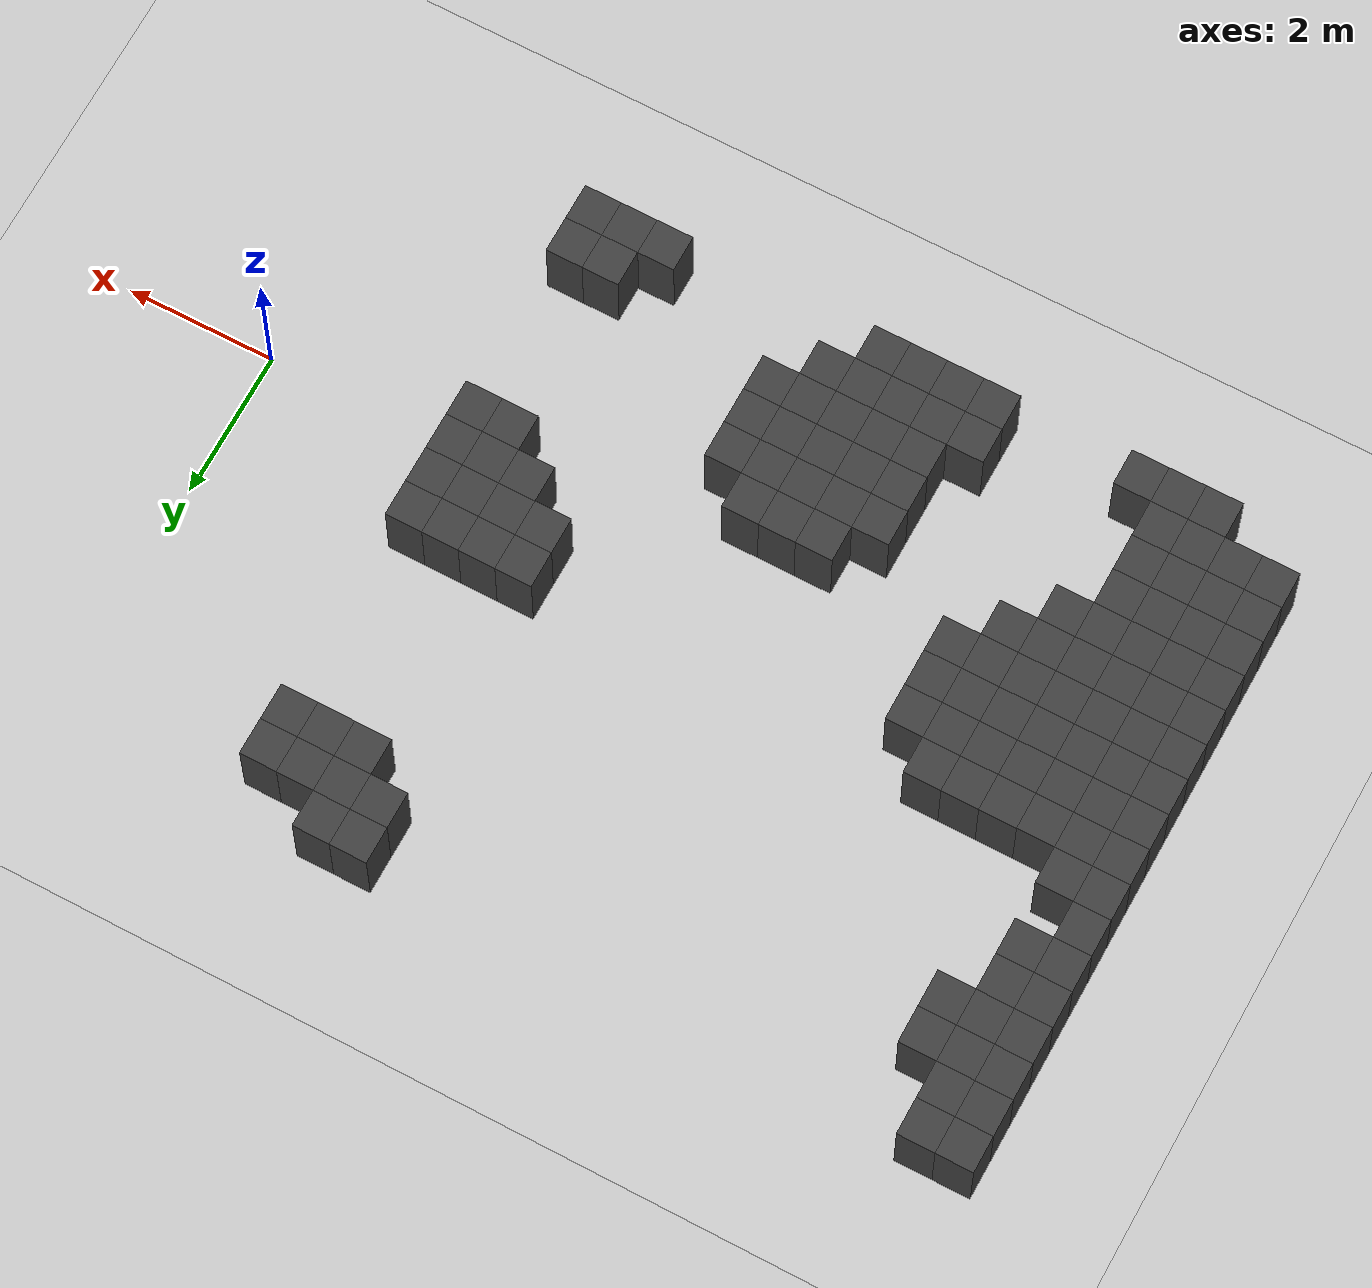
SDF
<sdf version="1.7">
 <world name="map_8382">
  <model name="ground_plane">
   <static>true</static>
   <link name="link">
    <collision name="collision">
     <geometry><plane><normal>0 0 1</normal><size>200 200</size></plane></geometry>
    </collision>
    <visual name="visual">
     <geometry><plane><normal>0 0 1</normal><size>200 200</size></plane></geometry>
     <material><ambient>0.8 0.8 0.8 1</ambient><diffuse>0.8 0.8 0.8 1</diffuse></material>
    </visual>
   </link>
  </model>
  <model name="maze_environment">
   <static>true</static>
   <link name="wall_267">
    <pose>-12.250 5.250 0.500 0 0 0</pose>
    <collision name="col"><geometry><box><size>0.5 0.5 1.0</size></box></geometry></collision>
    <visual name="vis">
     <geometry><box><size>0.5 0.5 1.0</size></box></geometry>
     <material><ambient>0.15 0.15 0.15 1</ambient><diffuse>0.25 0.25 0.25 1</diffuse></material>
    </visual>
   </link>
   <link name="wall_268">
    <pose>-11.750 5.250 0.500 0 0 0</pose>
    <collision name="col"><geometry><box><size>0.5 0.5 1.0</size></box></geometry></collision>
    <visual name="vis">
     <geometry><box><size>0.5 0.5 1.0</size></box></geometry>
     <material><ambient>0.15 0.15 0.15 1</ambient><diffuse>0.25 0.25 0.25 1</diffuse></material>
    </visual>
   </link>
   <link name="wall_269">
    <pose>-4.250 5.250 0.500 0 0 0</pose>
    <collision name="col"><geometry><box><size>0.5 0.5 1.0</size></box></geometry></collision>
    <visual name="vis">
     <geometry><box><size>0.5 0.5 1.0</size></box></geometry>
     <material><ambient>0.15 0.15 0.15 1</ambient><diffuse>0.25 0.25 0.25 1</diffuse></material>
    </visual>
   </link>
   <link name="wall_270">
    <pose>-3.750 5.250 0.500 0 0 0</pose>
    <collision name="col"><geometry><box><size>0.5 0.5 1.0</size></box></geometry></collision>
    <visual name="vis">
     <geometry><box><size>0.5 0.5 1.0</size></box></geometry>
     <material><ambient>0.15 0.15 0.15 1</ambient><diffuse>0.25 0.25 0.25 1</diffuse></material>
    </visual>
   </link>
   <link name="wall_276">
    <pose>-12.250 4.750 0.500 0 0 0</pose>
    <collision name="col"><geometry><box><size>0.5 0.5 1.0</size></box></geometry></collision>
    <visual name="vis">
     <geometry><box><size>0.5 0.5 1.0</size></box></geometry>
     <material><ambient>0.15 0.15 0.15 1</ambient><diffuse>0.25 0.25 0.25 1</diffuse></material>
    </visual>
   </link>
   <link name="wall_277">
    <pose>-11.750 4.750 0.500 0 0 0</pose>
    <collision name="col"><geometry><box><size>0.5 0.5 1.0</size></box></geometry></collision>
    <visual name="vis">
     <geometry><box><size>0.5 0.5 1.0</size></box></geometry>
     <material><ambient>0.15 0.15 0.15 1</ambient><diffuse>0.25 0.25 0.25 1</diffuse></material>
    </visual>
   </link>
   <link name="wall_278">
    <pose>-4.250 4.750 0.500 0 0 0</pose>
    <collision name="col"><geometry><box><size>0.5 0.5 1.0</size></box></geometry></collision>
    <visual name="vis">
     <geometry><box><size>0.5 0.5 1.0</size></box></geometry>
     <material><ambient>0.15 0.15 0.15 1</ambient><diffuse>0.25 0.25 0.25 1</diffuse></material>
    </visual>
   </link>
   <link name="wall_279">
    <pose>-3.750 4.750 0.500 0 0 0</pose>
    <collision name="col"><geometry><box><size>0.5 0.5 1.0</size></box></geometry></collision>
    <visual name="vis">
     <geometry><box><size>0.5 0.5 1.0</size></box></geometry>
     <material><ambient>0.15 0.15 0.15 1</ambient><diffuse>0.25 0.25 0.25 1</diffuse></material>
    </visual>
   </link>
   <link name="wall_280">
    <pose>-3.250 4.750 0.500 0 0 0</pose>
    <collision name="col"><geometry><box><size>0.5 0.5 1.0</size></box></geometry></collision>
    <visual name="vis">
     <geometry><box><size>0.5 0.5 1.0</size></box></geometry>
     <material><ambient>0.15 0.15 0.15 1</ambient><diffuse>0.25 0.25 0.25 1</diffuse></material>
    </visual>
   </link>
   <link name="wall_281">
    <pose>-2.750 4.750 0.500 0 0 0</pose>
    <collision name="col"><geometry><box><size>0.5 0.5 1.0</size></box></geometry></collision>
    <visual name="vis">
     <geometry><box><size>0.5 0.5 1.0</size></box></geometry>
     <material><ambient>0.15 0.15 0.15 1</ambient><diffuse>0.25 0.25 0.25 1</diffuse></material>
    </visual>
   </link>
   <link name="wall_287">
    <pose>-12.250 4.250 0.500 0 0 0</pose>
    <collision name="col"><geometry><box><size>0.5 0.5 1.0</size></box></geometry></collision>
    <visual name="vis">
     <geometry><box><size>0.5 0.5 1.0</size></box></geometry>
     <material><ambient>0.15 0.15 0.15 1</ambient><diffuse>0.25 0.25 0.25 1</diffuse></material>
    </visual>
   </link>
   <link name="wall_288">
    <pose>-11.750 4.250 0.500 0 0 0</pose>
    <collision name="col"><geometry><box><size>0.5 0.5 1.0</size></box></geometry></collision>
    <visual name="vis">
     <geometry><box><size>0.5 0.5 1.0</size></box></geometry>
     <material><ambient>0.15 0.15 0.15 1</ambient><diffuse>0.25 0.25 0.25 1</diffuse></material>
    </visual>
   </link>
   <link name="wall_289">
    <pose>-11.250 4.250 0.500 0 0 0</pose>
    <collision name="col"><geometry><box><size>0.5 0.5 1.0</size></box></geometry></collision>
    <visual name="vis">
     <geometry><box><size>0.5 0.5 1.0</size></box></geometry>
     <material><ambient>0.15 0.15 0.15 1</ambient><diffuse>0.25 0.25 0.25 1</diffuse></material>
    </visual>
   </link>
   <link name="wall_290">
    <pose>-3.750 4.250 0.500 0 0 0</pose>
    <collision name="col"><geometry><box><size>0.5 0.5 1.0</size></box></geometry></collision>
    <visual name="vis">
     <geometry><box><size>0.5 0.5 1.0</size></box></geometry>
     <material><ambient>0.15 0.15 0.15 1</ambient><diffuse>0.25 0.25 0.25 1</diffuse></material>
    </visual>
   </link>
   <link name="wall_291">
    <pose>-3.250 4.250 0.500 0 0 0</pose>
    <collision name="col"><geometry><box><size>0.5 0.5 1.0</size></box></geometry></collision>
    <visual name="vis">
     <geometry><box><size>0.5 0.5 1.0</size></box></geometry>
     <material><ambient>0.15 0.15 0.15 1</ambient><diffuse>0.25 0.25 0.25 1</diffuse></material>
    </visual>
   </link>
   <link name="wall_292">
    <pose>-2.750 4.250 0.500 0 0 0</pose>
    <collision name="col"><geometry><box><size>0.5 0.5 1.0</size></box></geometry></collision>
    <visual name="vis">
     <geometry><box><size>0.5 0.5 1.0</size></box></geometry>
     <material><ambient>0.15 0.15 0.15 1</ambient><diffuse>0.25 0.25 0.25 1</diffuse></material>
    </visual>
   </link>
   <link name="wall_298">
    <pose>-12.250 3.750 0.500 0 0 0</pose>
    <collision name="col"><geometry><box><size>0.5 0.5 1.0</size></box></geometry></collision>
    <visual name="vis">
     <geometry><box><size>0.5 0.5 1.0</size></box></geometry>
     <material><ambient>0.15 0.15 0.15 1</ambient><diffuse>0.25 0.25 0.25 1</diffuse></material>
    </visual>
   </link>
   <link name="wall_299">
    <pose>-11.750 3.750 0.500 0 0 0</pose>
    <collision name="col"><geometry><box><size>0.5 0.5 1.0</size></box></geometry></collision>
    <visual name="vis">
     <geometry><box><size>0.5 0.5 1.0</size></box></geometry>
     <material><ambient>0.15 0.15 0.15 1</ambient><diffuse>0.25 0.25 0.25 1</diffuse></material>
    </visual>
   </link>
   <link name="wall_300">
    <pose>-11.250 3.750 0.500 0 0 0</pose>
    <collision name="col"><geometry><box><size>0.5 0.5 1.0</size></box></geometry></collision>
    <visual name="vis">
     <geometry><box><size>0.5 0.5 1.0</size></box></geometry>
     <material><ambient>0.15 0.15 0.15 1</ambient><diffuse>0.25 0.25 0.25 1</diffuse></material>
    </visual>
   </link>
   <link name="wall_306">
    <pose>-12.250 3.250 0.500 0 0 0</pose>
    <collision name="col"><geometry><box><size>0.5 0.5 1.0</size></box></geometry></collision>
    <visual name="vis">
     <geometry><box><size>0.5 0.5 1.0</size></box></geometry>
     <material><ambient>0.15 0.15 0.15 1</ambient><diffuse>0.25 0.25 0.25 1</diffuse></material>
    </visual>
   </link>
   <link name="wall_307">
    <pose>-11.750 3.250 0.500 0 0 0</pose>
    <collision name="col"><geometry><box><size>0.5 0.5 1.0</size></box></geometry></collision>
    <visual name="vis">
     <geometry><box><size>0.5 0.5 1.0</size></box></geometry>
     <material><ambient>0.15 0.15 0.15 1</ambient><diffuse>0.25 0.25 0.25 1</diffuse></material>
    </visual>
   </link>
   <link name="wall_314">
    <pose>-12.250 2.750 0.500 0 0 0</pose>
    <collision name="col"><geometry><box><size>0.5 0.5 1.0</size></box></geometry></collision>
    <visual name="vis">
     <geometry><box><size>0.5 0.5 1.0</size></box></geometry>
     <material><ambient>0.15 0.15 0.15 1</ambient><diffuse>0.25 0.25 0.25 1</diffuse></material>
    </visual>
   </link>
   <link name="wall_315">
    <pose>-11.750 2.750 0.500 0 0 0</pose>
    <collision name="col"><geometry><box><size>0.5 0.5 1.0</size></box></geometry></collision>
    <visual name="vis">
     <geometry><box><size>0.5 0.5 1.0</size></box></geometry>
     <material><ambient>0.15 0.15 0.15 1</ambient><diffuse>0.25 0.25 0.25 1</diffuse></material>
    </visual>
   </link>
   <link name="wall_322">
    <pose>-12.250 2.250 0.500 0 0 0</pose>
    <collision name="col"><geometry><box><size>0.5 0.5 1.0</size></box></geometry></collision>
    <visual name="vis">
     <geometry><box><size>0.5 0.5 1.0</size></box></geometry>
     <material><ambient>0.15 0.15 0.15 1</ambient><diffuse>0.25 0.25 0.25 1</diffuse></material>
    </visual>
   </link>
   <link name="wall_329">
    <pose>-12.250 1.750 0.500 0 0 0</pose>
    <collision name="col"><geometry><box><size>0.5 0.5 1.0</size></box></geometry></collision>
    <visual name="vis">
     <geometry><box><size>0.5 0.5 1.0</size></box></geometry>
     <material><ambient>0.15 0.15 0.15 1</ambient><diffuse>0.25 0.25 0.25 1</diffuse></material>
    </visual>
   </link>
   <link name="wall_330">
    <pose>-11.750 1.750 0.500 0 0 0</pose>
    <collision name="col"><geometry><box><size>0.5 0.5 1.0</size></box></geometry></collision>
    <visual name="vis">
     <geometry><box><size>0.5 0.5 1.0</size></box></geometry>
     <material><ambient>0.15 0.15 0.15 1</ambient><diffuse>0.25 0.25 0.25 1</diffuse></material>
    </visual>
   </link>
   <link name="wall_333">
    <pose>-12.250 1.250 0.500 0 0 0</pose>
    <collision name="col"><geometry><box><size>0.5 0.5 1.0</size></box></geometry></collision>
    <visual name="vis">
     <geometry><box><size>0.5 0.5 1.0</size></box></geometry>
     <material><ambient>0.15 0.15 0.15 1</ambient><diffuse>0.25 0.25 0.25 1</diffuse></material>
    </visual>
   </link>
   <link name="wall_334">
    <pose>-11.750 1.250 0.500 0 0 0</pose>
    <collision name="col"><geometry><box><size>0.5 0.5 1.0</size></box></geometry></collision>
    <visual name="vis">
     <geometry><box><size>0.5 0.5 1.0</size></box></geometry>
     <material><ambient>0.15 0.15 0.15 1</ambient><diffuse>0.25 0.25 0.25 1</diffuse></material>
    </visual>
   </link>
   <link name="wall_335">
    <pose>-11.250 1.250 0.500 0 0 0</pose>
    <collision name="col"><geometry><box><size>0.5 0.5 1.0</size></box></geometry></collision>
    <visual name="vis">
     <geometry><box><size>0.5 0.5 1.0</size></box></geometry>
     <material><ambient>0.15 0.15 0.15 1</ambient><diffuse>0.25 0.25 0.25 1</diffuse></material>
    </visual>
   </link>
   <link name="wall_336">
    <pose>-10.750 1.250 0.500 0 0 0</pose>
    <collision name="col"><geometry><box><size>0.5 0.5 1.0</size></box></geometry></collision>
    <visual name="vis">
     <geometry><box><size>0.5 0.5 1.0</size></box></geometry>
     <material><ambient>0.15 0.15 0.15 1</ambient><diffuse>0.25 0.25 0.25 1</diffuse></material>
    </visual>
   </link>
   <link name="wall_337">
    <pose>-10.250 1.250 0.500 0 0 0</pose>
    <collision name="col"><geometry><box><size>0.5 0.5 1.0</size></box></geometry></collision>
    <visual name="vis">
     <geometry><box><size>0.5 0.5 1.0</size></box></geometry>
     <material><ambient>0.15 0.15 0.15 1</ambient><diffuse>0.25 0.25 0.25 1</diffuse></material>
    </visual>
   </link>
   <link name="wall_338">
    <pose>-9.750 1.250 0.500 0 0 0</pose>
    <collision name="col"><geometry><box><size>0.5 0.5 1.0</size></box></geometry></collision>
    <visual name="vis">
     <geometry><box><size>0.5 0.5 1.0</size></box></geometry>
     <material><ambient>0.15 0.15 0.15 1</ambient><diffuse>0.25 0.25 0.25 1</diffuse></material>
    </visual>
   </link>
   <link name="wall_339">
    <pose>-4.250 1.250 0.500 0 0 0</pose>
    <collision name="col"><geometry><box><size>0.5 0.5 1.0</size></box></geometry></collision>
    <visual name="vis">
     <geometry><box><size>0.5 0.5 1.0</size></box></geometry>
     <material><ambient>0.15 0.15 0.15 1</ambient><diffuse>0.25 0.25 0.25 1</diffuse></material>
    </visual>
   </link>
   <link name="wall_340">
    <pose>-3.750 1.250 0.500 0 0 0</pose>
    <collision name="col"><geometry><box><size>0.5 0.5 1.0</size></box></geometry></collision>
    <visual name="vis">
     <geometry><box><size>0.5 0.5 1.0</size></box></geometry>
     <material><ambient>0.15 0.15 0.15 1</ambient><diffuse>0.25 0.25 0.25 1</diffuse></material>
    </visual>
   </link>
   <link name="wall_341">
    <pose>-3.250 1.250 0.500 0 0 0</pose>
    <collision name="col"><geometry><box><size>0.5 0.5 1.0</size></box></geometry></collision>
    <visual name="vis">
     <geometry><box><size>0.5 0.5 1.0</size></box></geometry>
     <material><ambient>0.15 0.15 0.15 1</ambient><diffuse>0.25 0.25 0.25 1</diffuse></material>
    </visual>
   </link>
   <link name="wall_342">
    <pose>-2.750 1.250 0.500 0 0 0</pose>
    <collision name="col"><geometry><box><size>0.5 0.5 1.0</size></box></geometry></collision>
    <visual name="vis">
     <geometry><box><size>0.5 0.5 1.0</size></box></geometry>
     <material><ambient>0.15 0.15 0.15 1</ambient><diffuse>0.25 0.25 0.25 1</diffuse></material>
    </visual>
   </link>
   <link name="wall_349">
    <pose>-12.250 0.750 0.500 0 0 0</pose>
    <collision name="col"><geometry><box><size>0.5 0.5 1.0</size></box></geometry></collision>
    <visual name="vis">
     <geometry><box><size>0.5 0.5 1.0</size></box></geometry>
     <material><ambient>0.15 0.15 0.15 1</ambient><diffuse>0.25 0.25 0.25 1</diffuse></material>
    </visual>
   </link>
   <link name="wall_350">
    <pose>-11.750 0.750 0.500 0 0 0</pose>
    <collision name="col"><geometry><box><size>0.5 0.5 1.0</size></box></geometry></collision>
    <visual name="vis">
     <geometry><box><size>0.5 0.5 1.0</size></box></geometry>
     <material><ambient>0.15 0.15 0.15 1</ambient><diffuse>0.25 0.25 0.25 1</diffuse></material>
    </visual>
   </link>
   <link name="wall_351">
    <pose>-11.250 0.750 0.500 0 0 0</pose>
    <collision name="col"><geometry><box><size>0.5 0.5 1.0</size></box></geometry></collision>
    <visual name="vis">
     <geometry><box><size>0.5 0.5 1.0</size></box></geometry>
     <material><ambient>0.15 0.15 0.15 1</ambient><diffuse>0.25 0.25 0.25 1</diffuse></material>
    </visual>
   </link>
   <link name="wall_352">
    <pose>-10.750 0.750 0.500 0 0 0</pose>
    <collision name="col"><geometry><box><size>0.5 0.5 1.0</size></box></geometry></collision>
    <visual name="vis">
     <geometry><box><size>0.5 0.5 1.0</size></box></geometry>
     <material><ambient>0.15 0.15 0.15 1</ambient><diffuse>0.25 0.25 0.25 1</diffuse></material>
    </visual>
   </link>
   <link name="wall_353">
    <pose>-10.250 0.750 0.500 0 0 0</pose>
    <collision name="col"><geometry><box><size>0.5 0.5 1.0</size></box></geometry></collision>
    <visual name="vis">
     <geometry><box><size>0.5 0.5 1.0</size></box></geometry>
     <material><ambient>0.15 0.15 0.15 1</ambient><diffuse>0.25 0.25 0.25 1</diffuse></material>
    </visual>
   </link>
   <link name="wall_354">
    <pose>-9.750 0.750 0.500 0 0 0</pose>
    <collision name="col"><geometry><box><size>0.5 0.5 1.0</size></box></geometry></collision>
    <visual name="vis">
     <geometry><box><size>0.5 0.5 1.0</size></box></geometry>
     <material><ambient>0.15 0.15 0.15 1</ambient><diffuse>0.25 0.25 0.25 1</diffuse></material>
    </visual>
   </link>
   <link name="wall_355">
    <pose>-9.250 0.750 0.500 0 0 0</pose>
    <collision name="col"><geometry><box><size>0.5 0.5 1.0</size></box></geometry></collision>
    <visual name="vis">
     <geometry><box><size>0.5 0.5 1.0</size></box></geometry>
     <material><ambient>0.15 0.15 0.15 1</ambient><diffuse>0.25 0.25 0.25 1</diffuse></material>
    </visual>
   </link>
   <link name="wall_356">
    <pose>-4.250 0.750 0.500 0 0 0</pose>
    <collision name="col"><geometry><box><size>0.5 0.5 1.0</size></box></geometry></collision>
    <visual name="vis">
     <geometry><box><size>0.5 0.5 1.0</size></box></geometry>
     <material><ambient>0.15 0.15 0.15 1</ambient><diffuse>0.25 0.25 0.25 1</diffuse></material>
    </visual>
   </link>
   <link name="wall_357">
    <pose>-3.750 0.750 0.500 0 0 0</pose>
    <collision name="col"><geometry><box><size>0.5 0.5 1.0</size></box></geometry></collision>
    <visual name="vis">
     <geometry><box><size>0.5 0.5 1.0</size></box></geometry>
     <material><ambient>0.15 0.15 0.15 1</ambient><diffuse>0.25 0.25 0.25 1</diffuse></material>
    </visual>
   </link>
   <link name="wall_358">
    <pose>-3.250 0.750 0.500 0 0 0</pose>
    <collision name="col"><geometry><box><size>0.5 0.5 1.0</size></box></geometry></collision>
    <visual name="vis">
     <geometry><box><size>0.5 0.5 1.0</size></box></geometry>
     <material><ambient>0.15 0.15 0.15 1</ambient><diffuse>0.25 0.25 0.25 1</diffuse></material>
    </visual>
   </link>
   <link name="wall_359">
    <pose>-2.750 0.750 0.500 0 0 0</pose>
    <collision name="col"><geometry><box><size>0.5 0.5 1.0</size></box></geometry></collision>
    <visual name="vis">
     <geometry><box><size>0.5 0.5 1.0</size></box></geometry>
     <material><ambient>0.15 0.15 0.15 1</ambient><diffuse>0.25 0.25 0.25 1</diffuse></material>
    </visual>
   </link>
   <link name="wall_367">
    <pose>-12.250 0.250 0.500 0 0 0</pose>
    <collision name="col"><geometry><box><size>0.5 0.5 1.0</size></box></geometry></collision>
    <visual name="vis">
     <geometry><box><size>0.5 0.5 1.0</size></box></geometry>
     <material><ambient>0.15 0.15 0.15 1</ambient><diffuse>0.25 0.25 0.25 1</diffuse></material>
    </visual>
   </link>
   <link name="wall_368">
    <pose>-11.750 0.250 0.500 0 0 0</pose>
    <collision name="col"><geometry><box><size>0.5 0.5 1.0</size></box></geometry></collision>
    <visual name="vis">
     <geometry><box><size>0.5 0.5 1.0</size></box></geometry>
     <material><ambient>0.15 0.15 0.15 1</ambient><diffuse>0.25 0.25 0.25 1</diffuse></material>
    </visual>
   </link>
   <link name="wall_369">
    <pose>-11.250 0.250 0.500 0 0 0</pose>
    <collision name="col"><geometry><box><size>0.5 0.5 1.0</size></box></geometry></collision>
    <visual name="vis">
     <geometry><box><size>0.5 0.5 1.0</size></box></geometry>
     <material><ambient>0.15 0.15 0.15 1</ambient><diffuse>0.25 0.25 0.25 1</diffuse></material>
    </visual>
   </link>
   <link name="wall_370">
    <pose>-10.750 0.250 0.500 0 0 0</pose>
    <collision name="col"><geometry><box><size>0.5 0.5 1.0</size></box></geometry></collision>
    <visual name="vis">
     <geometry><box><size>0.5 0.5 1.0</size></box></geometry>
     <material><ambient>0.15 0.15 0.15 1</ambient><diffuse>0.25 0.25 0.25 1</diffuse></material>
    </visual>
   </link>
   <link name="wall_371">
    <pose>-10.250 0.250 0.500 0 0 0</pose>
    <collision name="col"><geometry><box><size>0.5 0.5 1.0</size></box></geometry></collision>
    <visual name="vis">
     <geometry><box><size>0.5 0.5 1.0</size></box></geometry>
     <material><ambient>0.15 0.15 0.15 1</ambient><diffuse>0.25 0.25 0.25 1</diffuse></material>
    </visual>
   </link>
   <link name="wall_372">
    <pose>-9.750 0.250 0.500 0 0 0</pose>
    <collision name="col"><geometry><box><size>0.5 0.5 1.0</size></box></geometry></collision>
    <visual name="vis">
     <geometry><box><size>0.5 0.5 1.0</size></box></geometry>
     <material><ambient>0.15 0.15 0.15 1</ambient><diffuse>0.25 0.25 0.25 1</diffuse></material>
    </visual>
   </link>
   <link name="wall_373">
    <pose>-9.250 0.250 0.500 0 0 0</pose>
    <collision name="col"><geometry><box><size>0.5 0.5 1.0</size></box></geometry></collision>
    <visual name="vis">
     <geometry><box><size>0.5 0.5 1.0</size></box></geometry>
     <material><ambient>0.15 0.15 0.15 1</ambient><diffuse>0.25 0.25 0.25 1</diffuse></material>
    </visual>
   </link>
   <link name="wall_374">
    <pose>-3.750 0.250 0.500 0 0 0</pose>
    <collision name="col"><geometry><box><size>0.5 0.5 1.0</size></box></geometry></collision>
    <visual name="vis">
     <geometry><box><size>0.5 0.5 1.0</size></box></geometry>
     <material><ambient>0.15 0.15 0.15 1</ambient><diffuse>0.25 0.25 0.25 1</diffuse></material>
    </visual>
   </link>
   <link name="wall_375">
    <pose>-3.250 0.250 0.500 0 0 0</pose>
    <collision name="col"><geometry><box><size>0.5 0.5 1.0</size></box></geometry></collision>
    <visual name="vis">
     <geometry><box><size>0.5 0.5 1.0</size></box></geometry>
     <material><ambient>0.15 0.15 0.15 1</ambient><diffuse>0.25 0.25 0.25 1</diffuse></material>
    </visual>
   </link>
   <link name="wall_376">
    <pose>-2.750 0.250 0.500 0 0 0</pose>
    <collision name="col"><geometry><box><size>0.5 0.5 1.0</size></box></geometry></collision>
    <visual name="vis">
     <geometry><box><size>0.5 0.5 1.0</size></box></geometry>
     <material><ambient>0.15 0.15 0.15 1</ambient><diffuse>0.25 0.25 0.25 1</diffuse></material>
    </visual>
   </link>
   <link name="wall_385">
    <pose>-12.250 -0.250 0.500 0 0 0</pose>
    <collision name="col"><geometry><box><size>0.5 0.5 1.0</size></box></geometry></collision>
    <visual name="vis">
     <geometry><box><size>0.5 0.5 1.0</size></box></geometry>
     <material><ambient>0.15 0.15 0.15 1</ambient><diffuse>0.25 0.25 0.25 1</diffuse></material>
    </visual>
   </link>
   <link name="wall_386">
    <pose>-11.750 -0.250 0.500 0 0 0</pose>
    <collision name="col"><geometry><box><size>0.5 0.5 1.0</size></box></geometry></collision>
    <visual name="vis">
     <geometry><box><size>0.5 0.5 1.0</size></box></geometry>
     <material><ambient>0.15 0.15 0.15 1</ambient><diffuse>0.25 0.25 0.25 1</diffuse></material>
    </visual>
   </link>
   <link name="wall_387">
    <pose>-11.250 -0.250 0.500 0 0 0</pose>
    <collision name="col"><geometry><box><size>0.5 0.5 1.0</size></box></geometry></collision>
    <visual name="vis">
     <geometry><box><size>0.5 0.5 1.0</size></box></geometry>
     <material><ambient>0.15 0.15 0.15 1</ambient><diffuse>0.25 0.25 0.25 1</diffuse></material>
    </visual>
   </link>
   <link name="wall_388">
    <pose>-10.750 -0.250 0.500 0 0 0</pose>
    <collision name="col"><geometry><box><size>0.5 0.5 1.0</size></box></geometry></collision>
    <visual name="vis">
     <geometry><box><size>0.5 0.5 1.0</size></box></geometry>
     <material><ambient>0.15 0.15 0.15 1</ambient><diffuse>0.25 0.25 0.25 1</diffuse></material>
    </visual>
   </link>
   <link name="wall_389">
    <pose>-10.250 -0.250 0.500 0 0 0</pose>
    <collision name="col"><geometry><box><size>0.5 0.5 1.0</size></box></geometry></collision>
    <visual name="vis">
     <geometry><box><size>0.5 0.5 1.0</size></box></geometry>
     <material><ambient>0.15 0.15 0.15 1</ambient><diffuse>0.25 0.25 0.25 1</diffuse></material>
    </visual>
   </link>
   <link name="wall_390">
    <pose>-9.750 -0.250 0.500 0 0 0</pose>
    <collision name="col"><geometry><box><size>0.5 0.5 1.0</size></box></geometry></collision>
    <visual name="vis">
     <geometry><box><size>0.5 0.5 1.0</size></box></geometry>
     <material><ambient>0.15 0.15 0.15 1</ambient><diffuse>0.25 0.25 0.25 1</diffuse></material>
    </visual>
   </link>
   <link name="wall_391">
    <pose>-9.250 -0.250 0.500 0 0 0</pose>
    <collision name="col"><geometry><box><size>0.5 0.5 1.0</size></box></geometry></collision>
    <visual name="vis">
     <geometry><box><size>0.5 0.5 1.0</size></box></geometry>
     <material><ambient>0.15 0.15 0.15 1</ambient><diffuse>0.25 0.25 0.25 1</diffuse></material>
    </visual>
   </link>
   <link name="wall_392">
    <pose>-3.250 -0.250 0.500 0 0 0</pose>
    <collision name="col"><geometry><box><size>0.5 0.5 1.0</size></box></geometry></collision>
    <visual name="vis">
     <geometry><box><size>0.5 0.5 1.0</size></box></geometry>
     <material><ambient>0.15 0.15 0.15 1</ambient><diffuse>0.25 0.25 0.25 1</diffuse></material>
    </visual>
   </link>
   <link name="wall_393">
    <pose>-2.750 -0.250 0.500 0 0 0</pose>
    <collision name="col"><geometry><box><size>0.5 0.5 1.0</size></box></geometry></collision>
    <visual name="vis">
     <geometry><box><size>0.5 0.5 1.0</size></box></geometry>
     <material><ambient>0.15 0.15 0.15 1</ambient><diffuse>0.25 0.25 0.25 1</diffuse></material>
    </visual>
   </link>
   <link name="wall_406">
    <pose>-12.250 -0.750 0.500 0 0 0</pose>
    <collision name="col"><geometry><box><size>0.5 0.5 1.0</size></box></geometry></collision>
    <visual name="vis">
     <geometry><box><size>0.5 0.5 1.0</size></box></geometry>
     <material><ambient>0.15 0.15 0.15 1</ambient><diffuse>0.25 0.25 0.25 1</diffuse></material>
    </visual>
   </link>
   <link name="wall_407">
    <pose>-11.750 -0.750 0.500 0 0 0</pose>
    <collision name="col"><geometry><box><size>0.5 0.5 1.0</size></box></geometry></collision>
    <visual name="vis">
     <geometry><box><size>0.5 0.5 1.0</size></box></geometry>
     <material><ambient>0.15 0.15 0.15 1</ambient><diffuse>0.25 0.25 0.25 1</diffuse></material>
    </visual>
   </link>
   <link name="wall_408">
    <pose>-11.250 -0.750 0.500 0 0 0</pose>
    <collision name="col"><geometry><box><size>0.5 0.5 1.0</size></box></geometry></collision>
    <visual name="vis">
     <geometry><box><size>0.5 0.5 1.0</size></box></geometry>
     <material><ambient>0.15 0.15 0.15 1</ambient><diffuse>0.25 0.25 0.25 1</diffuse></material>
    </visual>
   </link>
   <link name="wall_409">
    <pose>-10.750 -0.750 0.500 0 0 0</pose>
    <collision name="col"><geometry><box><size>0.5 0.5 1.0</size></box></geometry></collision>
    <visual name="vis">
     <geometry><box><size>0.5 0.5 1.0</size></box></geometry>
     <material><ambient>0.15 0.15 0.15 1</ambient><diffuse>0.25 0.25 0.25 1</diffuse></material>
    </visual>
   </link>
   <link name="wall_410">
    <pose>-10.250 -0.750 0.500 0 0 0</pose>
    <collision name="col"><geometry><box><size>0.5 0.5 1.0</size></box></geometry></collision>
    <visual name="vis">
     <geometry><box><size>0.5 0.5 1.0</size></box></geometry>
     <material><ambient>0.15 0.15 0.15 1</ambient><diffuse>0.25 0.25 0.25 1</diffuse></material>
    </visual>
   </link>
   <link name="wall_411">
    <pose>-9.750 -0.750 0.500 0 0 0</pose>
    <collision name="col"><geometry><box><size>0.5 0.5 1.0</size></box></geometry></collision>
    <visual name="vis">
     <geometry><box><size>0.5 0.5 1.0</size></box></geometry>
     <material><ambient>0.15 0.15 0.15 1</ambient><diffuse>0.25 0.25 0.25 1</diffuse></material>
    </visual>
   </link>
   <link name="wall_412">
    <pose>-7.250 -0.750 0.500 0 0 0</pose>
    <collision name="col"><geometry><box><size>0.5 0.5 1.0</size></box></geometry></collision>
    <visual name="vis">
     <geometry><box><size>0.5 0.5 1.0</size></box></geometry>
     <material><ambient>0.15 0.15 0.15 1</ambient><diffuse>0.25 0.25 0.25 1</diffuse></material>
    </visual>
   </link>
   <link name="wall_413">
    <pose>-6.750 -0.750 0.500 0 0 0</pose>
    <collision name="col"><geometry><box><size>0.5 0.5 1.0</size></box></geometry></collision>
    <visual name="vis">
     <geometry><box><size>0.5 0.5 1.0</size></box></geometry>
     <material><ambient>0.15 0.15 0.15 1</ambient><diffuse>0.25 0.25 0.25 1</diffuse></material>
    </visual>
   </link>
   <link name="wall_414">
    <pose>-6.250 -0.750 0.500 0 0 0</pose>
    <collision name="col"><geometry><box><size>0.5 0.5 1.0</size></box></geometry></collision>
    <visual name="vis">
     <geometry><box><size>0.5 0.5 1.0</size></box></geometry>
     <material><ambient>0.15 0.15 0.15 1</ambient><diffuse>0.25 0.25 0.25 1</diffuse></material>
    </visual>
   </link>
   <link name="wall_426">
    <pose>-12.250 -1.250 0.500 0 0 0</pose>
    <collision name="col"><geometry><box><size>0.5 0.5 1.0</size></box></geometry></collision>
    <visual name="vis">
     <geometry><box><size>0.5 0.5 1.0</size></box></geometry>
     <material><ambient>0.15 0.15 0.15 1</ambient><diffuse>0.25 0.25 0.25 1</diffuse></material>
    </visual>
   </link>
   <link name="wall_427">
    <pose>-11.750 -1.250 0.500 0 0 0</pose>
    <collision name="col"><geometry><box><size>0.5 0.5 1.0</size></box></geometry></collision>
    <visual name="vis">
     <geometry><box><size>0.5 0.5 1.0</size></box></geometry>
     <material><ambient>0.15 0.15 0.15 1</ambient><diffuse>0.25 0.25 0.25 1</diffuse></material>
    </visual>
   </link>
   <link name="wall_428">
    <pose>-11.250 -1.250 0.500 0 0 0</pose>
    <collision name="col"><geometry><box><size>0.5 0.5 1.0</size></box></geometry></collision>
    <visual name="vis">
     <geometry><box><size>0.5 0.5 1.0</size></box></geometry>
     <material><ambient>0.15 0.15 0.15 1</ambient><diffuse>0.25 0.25 0.25 1</diffuse></material>
    </visual>
   </link>
   <link name="wall_429">
    <pose>-10.750 -1.250 0.500 0 0 0</pose>
    <collision name="col"><geometry><box><size>0.5 0.5 1.0</size></box></geometry></collision>
    <visual name="vis">
     <geometry><box><size>0.5 0.5 1.0</size></box></geometry>
     <material><ambient>0.15 0.15 0.15 1</ambient><diffuse>0.25 0.25 0.25 1</diffuse></material>
    </visual>
   </link>
   <link name="wall_430">
    <pose>-10.250 -1.250 0.500 0 0 0</pose>
    <collision name="col"><geometry><box><size>0.5 0.5 1.0</size></box></geometry></collision>
    <visual name="vis">
     <geometry><box><size>0.5 0.5 1.0</size></box></geometry>
     <material><ambient>0.15 0.15 0.15 1</ambient><diffuse>0.25 0.25 0.25 1</diffuse></material>
    </visual>
   </link>
   <link name="wall_431">
    <pose>-7.750 -1.250 0.500 0 0 0</pose>
    <collision name="col"><geometry><box><size>0.5 0.5 1.0</size></box></geometry></collision>
    <visual name="vis">
     <geometry><box><size>0.5 0.5 1.0</size></box></geometry>
     <material><ambient>0.15 0.15 0.15 1</ambient><diffuse>0.25 0.25 0.25 1</diffuse></material>
    </visual>
   </link>
   <link name="wall_432">
    <pose>-7.250 -1.250 0.500 0 0 0</pose>
    <collision name="col"><geometry><box><size>0.5 0.5 1.0</size></box></geometry></collision>
    <visual name="vis">
     <geometry><box><size>0.5 0.5 1.0</size></box></geometry>
     <material><ambient>0.15 0.15 0.15 1</ambient><diffuse>0.25 0.25 0.25 1</diffuse></material>
    </visual>
   </link>
   <link name="wall_433">
    <pose>-6.750 -1.250 0.500 0 0 0</pose>
    <collision name="col"><geometry><box><size>0.5 0.5 1.0</size></box></geometry></collision>
    <visual name="vis">
     <geometry><box><size>0.5 0.5 1.0</size></box></geometry>
     <material><ambient>0.15 0.15 0.15 1</ambient><diffuse>0.25 0.25 0.25 1</diffuse></material>
    </visual>
   </link>
   <link name="wall_434">
    <pose>-6.250 -1.250 0.500 0 0 0</pose>
    <collision name="col"><geometry><box><size>0.5 0.5 1.0</size></box></geometry></collision>
    <visual name="vis">
     <geometry><box><size>0.5 0.5 1.0</size></box></geometry>
     <material><ambient>0.15 0.15 0.15 1</ambient><diffuse>0.25 0.25 0.25 1</diffuse></material>
    </visual>
   </link>
   <link name="wall_435">
    <pose>-5.750 -1.250 0.500 0 0 0</pose>
    <collision name="col"><geometry><box><size>0.5 0.5 1.0</size></box></geometry></collision>
    <visual name="vis">
     <geometry><box><size>0.5 0.5 1.0</size></box></geometry>
     <material><ambient>0.15 0.15 0.15 1</ambient><diffuse>0.25 0.25 0.25 1</diffuse></material>
    </visual>
   </link>
   <link name="wall_449">
    <pose>-12.250 -1.750 0.500 0 0 0</pose>
    <collision name="col"><geometry><box><size>0.5 0.5 1.0</size></box></geometry></collision>
    <visual name="vis">
     <geometry><box><size>0.5 0.5 1.0</size></box></geometry>
     <material><ambient>0.15 0.15 0.15 1</ambient><diffuse>0.25 0.25 0.25 1</diffuse></material>
    </visual>
   </link>
   <link name="wall_450">
    <pose>-11.750 -1.750 0.500 0 0 0</pose>
    <collision name="col"><geometry><box><size>0.5 0.5 1.0</size></box></geometry></collision>
    <visual name="vis">
     <geometry><box><size>0.5 0.5 1.0</size></box></geometry>
     <material><ambient>0.15 0.15 0.15 1</ambient><diffuse>0.25 0.25 0.25 1</diffuse></material>
    </visual>
   </link>
   <link name="wall_451">
    <pose>-11.250 -1.750 0.500 0 0 0</pose>
    <collision name="col"><geometry><box><size>0.5 0.5 1.0</size></box></geometry></collision>
    <visual name="vis">
     <geometry><box><size>0.5 0.5 1.0</size></box></geometry>
     <material><ambient>0.15 0.15 0.15 1</ambient><diffuse>0.25 0.25 0.25 1</diffuse></material>
    </visual>
   </link>
   <link name="wall_452">
    <pose>-10.750 -1.750 0.500 0 0 0</pose>
    <collision name="col"><geometry><box><size>0.5 0.5 1.0</size></box></geometry></collision>
    <visual name="vis">
     <geometry><box><size>0.5 0.5 1.0</size></box></geometry>
     <material><ambient>0.15 0.15 0.15 1</ambient><diffuse>0.25 0.25 0.25 1</diffuse></material>
    </visual>
   </link>
   <link name="wall_453">
    <pose>-7.750 -1.750 0.500 0 0 0</pose>
    <collision name="col"><geometry><box><size>0.5 0.5 1.0</size></box></geometry></collision>
    <visual name="vis">
     <geometry><box><size>0.5 0.5 1.0</size></box></geometry>
     <material><ambient>0.15 0.15 0.15 1</ambient><diffuse>0.25 0.25 0.25 1</diffuse></material>
    </visual>
   </link>
   <link name="wall_454">
    <pose>-7.250 -1.750 0.500 0 0 0</pose>
    <collision name="col"><geometry><box><size>0.5 0.5 1.0</size></box></geometry></collision>
    <visual name="vis">
     <geometry><box><size>0.5 0.5 1.0</size></box></geometry>
     <material><ambient>0.15 0.15 0.15 1</ambient><diffuse>0.25 0.25 0.25 1</diffuse></material>
    </visual>
   </link>
   <link name="wall_455">
    <pose>-6.750 -1.750 0.500 0 0 0</pose>
    <collision name="col"><geometry><box><size>0.5 0.5 1.0</size></box></geometry></collision>
    <visual name="vis">
     <geometry><box><size>0.5 0.5 1.0</size></box></geometry>
     <material><ambient>0.15 0.15 0.15 1</ambient><diffuse>0.25 0.25 0.25 1</diffuse></material>
    </visual>
   </link>
   <link name="wall_456">
    <pose>-6.250 -1.750 0.500 0 0 0</pose>
    <collision name="col"><geometry><box><size>0.5 0.5 1.0</size></box></geometry></collision>
    <visual name="vis">
     <geometry><box><size>0.5 0.5 1.0</size></box></geometry>
     <material><ambient>0.15 0.15 0.15 1</ambient><diffuse>0.25 0.25 0.25 1</diffuse></material>
    </visual>
   </link>
   <link name="wall_457">
    <pose>-5.750 -1.750 0.500 0 0 0</pose>
    <collision name="col"><geometry><box><size>0.5 0.5 1.0</size></box></geometry></collision>
    <visual name="vis">
     <geometry><box><size>0.5 0.5 1.0</size></box></geometry>
     <material><ambient>0.15 0.15 0.15 1</ambient><diffuse>0.25 0.25 0.25 1</diffuse></material>
    </visual>
   </link>
   <link name="wall_472">
    <pose>-12.250 -2.250 0.500 0 0 0</pose>
    <collision name="col"><geometry><box><size>0.5 0.5 1.0</size></box></geometry></collision>
    <visual name="vis">
     <geometry><box><size>0.5 0.5 1.0</size></box></geometry>
     <material><ambient>0.15 0.15 0.15 1</ambient><diffuse>0.25 0.25 0.25 1</diffuse></material>
    </visual>
   </link>
   <link name="wall_473">
    <pose>-11.750 -2.250 0.500 0 0 0</pose>
    <collision name="col"><geometry><box><size>0.5 0.5 1.0</size></box></geometry></collision>
    <visual name="vis">
     <geometry><box><size>0.5 0.5 1.0</size></box></geometry>
     <material><ambient>0.15 0.15 0.15 1</ambient><diffuse>0.25 0.25 0.25 1</diffuse></material>
    </visual>
   </link>
   <link name="wall_474">
    <pose>-11.250 -2.250 0.500 0 0 0</pose>
    <collision name="col"><geometry><box><size>0.5 0.5 1.0</size></box></geometry></collision>
    <visual name="vis">
     <geometry><box><size>0.5 0.5 1.0</size></box></geometry>
     <material><ambient>0.15 0.15 0.15 1</ambient><diffuse>0.25 0.25 0.25 1</diffuse></material>
    </visual>
   </link>
   <link name="wall_475">
    <pose>-10.750 -2.250 0.500 0 0 0</pose>
    <collision name="col"><geometry><box><size>0.5 0.5 1.0</size></box></geometry></collision>
    <visual name="vis">
     <geometry><box><size>0.5 0.5 1.0</size></box></geometry>
     <material><ambient>0.15 0.15 0.15 1</ambient><diffuse>0.25 0.25 0.25 1</diffuse></material>
    </visual>
   </link>
   <link name="wall_476">
    <pose>-7.750 -2.250 0.500 0 0 0</pose>
    <collision name="col"><geometry><box><size>0.5 0.5 1.0</size></box></geometry></collision>
    <visual name="vis">
     <geometry><box><size>0.5 0.5 1.0</size></box></geometry>
     <material><ambient>0.15 0.15 0.15 1</ambient><diffuse>0.25 0.25 0.25 1</diffuse></material>
    </visual>
   </link>
   <link name="wall_477">
    <pose>-7.250 -2.250 0.500 0 0 0</pose>
    <collision name="col"><geometry><box><size>0.5 0.5 1.0</size></box></geometry></collision>
    <visual name="vis">
     <geometry><box><size>0.5 0.5 1.0</size></box></geometry>
     <material><ambient>0.15 0.15 0.15 1</ambient><diffuse>0.25 0.25 0.25 1</diffuse></material>
    </visual>
   </link>
   <link name="wall_478">
    <pose>-6.750 -2.250 0.500 0 0 0</pose>
    <collision name="col"><geometry><box><size>0.5 0.5 1.0</size></box></geometry></collision>
    <visual name="vis">
     <geometry><box><size>0.5 0.5 1.0</size></box></geometry>
     <material><ambient>0.15 0.15 0.15 1</ambient><diffuse>0.25 0.25 0.25 1</diffuse></material>
    </visual>
   </link>
   <link name="wall_479">
    <pose>-6.250 -2.250 0.500 0 0 0</pose>
    <collision name="col"><geometry><box><size>0.5 0.5 1.0</size></box></geometry></collision>
    <visual name="vis">
     <geometry><box><size>0.5 0.5 1.0</size></box></geometry>
     <material><ambient>0.15 0.15 0.15 1</ambient><diffuse>0.25 0.25 0.25 1</diffuse></material>
    </visual>
   </link>
   <link name="wall_480">
    <pose>-5.750 -2.250 0.500 0 0 0</pose>
    <collision name="col"><geometry><box><size>0.5 0.5 1.0</size></box></geometry></collision>
    <visual name="vis">
     <geometry><box><size>0.5 0.5 1.0</size></box></geometry>
     <material><ambient>0.15 0.15 0.15 1</ambient><diffuse>0.25 0.25 0.25 1</diffuse></material>
    </visual>
   </link>
   <link name="wall_490">
    <pose>-12.250 -2.750 0.500 0 0 0</pose>
    <collision name="col"><geometry><box><size>0.5 0.5 1.0</size></box></geometry></collision>
    <visual name="vis">
     <geometry><box><size>0.5 0.5 1.0</size></box></geometry>
     <material><ambient>0.15 0.15 0.15 1</ambient><diffuse>0.25 0.25 0.25 1</diffuse></material>
    </visual>
   </link>
   <link name="wall_491">
    <pose>-11.750 -2.750 0.500 0 0 0</pose>
    <collision name="col"><geometry><box><size>0.5 0.5 1.0</size></box></geometry></collision>
    <visual name="vis">
     <geometry><box><size>0.5 0.5 1.0</size></box></geometry>
     <material><ambient>0.15 0.15 0.15 1</ambient><diffuse>0.25 0.25 0.25 1</diffuse></material>
    </visual>
   </link>
   <link name="wall_492">
    <pose>-11.250 -2.750 0.500 0 0 0</pose>
    <collision name="col"><geometry><box><size>0.5 0.5 1.0</size></box></geometry></collision>
    <visual name="vis">
     <geometry><box><size>0.5 0.5 1.0</size></box></geometry>
     <material><ambient>0.15 0.15 0.15 1</ambient><diffuse>0.25 0.25 0.25 1</diffuse></material>
    </visual>
   </link>
   <link name="wall_493">
    <pose>-10.750 -2.750 0.500 0 0 0</pose>
    <collision name="col"><geometry><box><size>0.5 0.5 1.0</size></box></geometry></collision>
    <visual name="vis">
     <geometry><box><size>0.5 0.5 1.0</size></box></geometry>
     <material><ambient>0.15 0.15 0.15 1</ambient><diffuse>0.25 0.25 0.25 1</diffuse></material>
    </visual>
   </link>
   <link name="wall_494">
    <pose>-8.250 -2.750 0.500 0 0 0</pose>
    <collision name="col"><geometry><box><size>0.5 0.5 1.0</size></box></geometry></collision>
    <visual name="vis">
     <geometry><box><size>0.5 0.5 1.0</size></box></geometry>
     <material><ambient>0.15 0.15 0.15 1</ambient><diffuse>0.25 0.25 0.25 1</diffuse></material>
    </visual>
   </link>
   <link name="wall_495">
    <pose>-7.750 -2.750 0.500 0 0 0</pose>
    <collision name="col"><geometry><box><size>0.5 0.5 1.0</size></box></geometry></collision>
    <visual name="vis">
     <geometry><box><size>0.5 0.5 1.0</size></box></geometry>
     <material><ambient>0.15 0.15 0.15 1</ambient><diffuse>0.25 0.25 0.25 1</diffuse></material>
    </visual>
   </link>
   <link name="wall_496">
    <pose>-7.250 -2.750 0.500 0 0 0</pose>
    <collision name="col"><geometry><box><size>0.5 0.5 1.0</size></box></geometry></collision>
    <visual name="vis">
     <geometry><box><size>0.5 0.5 1.0</size></box></geometry>
     <material><ambient>0.15 0.15 0.15 1</ambient><diffuse>0.25 0.25 0.25 1</diffuse></material>
    </visual>
   </link>
   <link name="wall_497">
    <pose>-6.750 -2.750 0.500 0 0 0</pose>
    <collision name="col"><geometry><box><size>0.5 0.5 1.0</size></box></geometry></collision>
    <visual name="vis">
     <geometry><box><size>0.5 0.5 1.0</size></box></geometry>
     <material><ambient>0.15 0.15 0.15 1</ambient><diffuse>0.25 0.25 0.25 1</diffuse></material>
    </visual>
   </link>
   <link name="wall_498">
    <pose>-6.250 -2.750 0.500 0 0 0</pose>
    <collision name="col"><geometry><box><size>0.5 0.5 1.0</size></box></geometry></collision>
    <visual name="vis">
     <geometry><box><size>0.5 0.5 1.0</size></box></geometry>
     <material><ambient>0.15 0.15 0.15 1</ambient><diffuse>0.25 0.25 0.25 1</diffuse></material>
    </visual>
   </link>
   <link name="wall_499">
    <pose>-3.250 -2.750 0.500 0 0 0</pose>
    <collision name="col"><geometry><box><size>0.5 0.5 1.0</size></box></geometry></collision>
    <visual name="vis">
     <geometry><box><size>0.5 0.5 1.0</size></box></geometry>
     <material><ambient>0.15 0.15 0.15 1</ambient><diffuse>0.25 0.25 0.25 1</diffuse></material>
    </visual>
   </link>
   <link name="wall_500">
    <pose>-2.750 -2.750 0.500 0 0 0</pose>
    <collision name="col"><geometry><box><size>0.5 0.5 1.0</size></box></geometry></collision>
    <visual name="vis">
     <geometry><box><size>0.5 0.5 1.0</size></box></geometry>
     <material><ambient>0.15 0.15 0.15 1</ambient><diffuse>0.25 0.25 0.25 1</diffuse></material>
    </visual>
   </link>
   <link name="wall_512">
    <pose>-11.250 -3.250 0.500 0 0 0</pose>
    <collision name="col"><geometry><box><size>0.5 0.5 1.0</size></box></geometry></collision>
    <visual name="vis">
     <geometry><box><size>0.5 0.5 1.0</size></box></geometry>
     <material><ambient>0.15 0.15 0.15 1</ambient><diffuse>0.25 0.25 0.25 1</diffuse></material>
    </visual>
   </link>
   <link name="wall_513">
    <pose>-10.750 -3.250 0.500 0 0 0</pose>
    <collision name="col"><geometry><box><size>0.5 0.5 1.0</size></box></geometry></collision>
    <visual name="vis">
     <geometry><box><size>0.5 0.5 1.0</size></box></geometry>
     <material><ambient>0.15 0.15 0.15 1</ambient><diffuse>0.25 0.25 0.25 1</diffuse></material>
    </visual>
   </link>
   <link name="wall_514">
    <pose>-10.250 -3.250 0.500 0 0 0</pose>
    <collision name="col"><geometry><box><size>0.5 0.5 1.0</size></box></geometry></collision>
    <visual name="vis">
     <geometry><box><size>0.5 0.5 1.0</size></box></geometry>
     <material><ambient>0.15 0.15 0.15 1</ambient><diffuse>0.25 0.25 0.25 1</diffuse></material>
    </visual>
   </link>
   <link name="wall_515">
    <pose>-8.250 -3.250 0.500 0 0 0</pose>
    <collision name="col"><geometry><box><size>0.5 0.5 1.0</size></box></geometry></collision>
    <visual name="vis">
     <geometry><box><size>0.5 0.5 1.0</size></box></geometry>
     <material><ambient>0.15 0.15 0.15 1</ambient><diffuse>0.25 0.25 0.25 1</diffuse></material>
    </visual>
   </link>
   <link name="wall_516">
    <pose>-7.750 -3.250 0.500 0 0 0</pose>
    <collision name="col"><geometry><box><size>0.5 0.5 1.0</size></box></geometry></collision>
    <visual name="vis">
     <geometry><box><size>0.5 0.5 1.0</size></box></geometry>
     <material><ambient>0.15 0.15 0.15 1</ambient><diffuse>0.25 0.25 0.25 1</diffuse></material>
    </visual>
   </link>
   <link name="wall_517">
    <pose>-7.250 -3.250 0.500 0 0 0</pose>
    <collision name="col"><geometry><box><size>0.5 0.5 1.0</size></box></geometry></collision>
    <visual name="vis">
     <geometry><box><size>0.5 0.5 1.0</size></box></geometry>
     <material><ambient>0.15 0.15 0.15 1</ambient><diffuse>0.25 0.25 0.25 1</diffuse></material>
    </visual>
   </link>
   <link name="wall_518">
    <pose>-6.750 -3.250 0.500 0 0 0</pose>
    <collision name="col"><geometry><box><size>0.5 0.5 1.0</size></box></geometry></collision>
    <visual name="vis">
     <geometry><box><size>0.5 0.5 1.0</size></box></geometry>
     <material><ambient>0.15 0.15 0.15 1</ambient><diffuse>0.25 0.25 0.25 1</diffuse></material>
    </visual>
   </link>
   <link name="wall_519">
    <pose>-3.750 -3.250 0.500 0 0 0</pose>
    <collision name="col"><geometry><box><size>0.5 0.5 1.0</size></box></geometry></collision>
    <visual name="vis">
     <geometry><box><size>0.5 0.5 1.0</size></box></geometry>
     <material><ambient>0.15 0.15 0.15 1</ambient><diffuse>0.25 0.25 0.25 1</diffuse></material>
    </visual>
   </link>
   <link name="wall_520">
    <pose>-3.250 -3.250 0.500 0 0 0</pose>
    <collision name="col"><geometry><box><size>0.5 0.5 1.0</size></box></geometry></collision>
    <visual name="vis">
     <geometry><box><size>0.5 0.5 1.0</size></box></geometry>
     <material><ambient>0.15 0.15 0.15 1</ambient><diffuse>0.25 0.25 0.25 1</diffuse></material>
    </visual>
   </link>
   <link name="wall_521">
    <pose>-2.750 -3.250 0.500 0 0 0</pose>
    <collision name="col"><geometry><box><size>0.5 0.5 1.0</size></box></geometry></collision>
    <visual name="vis">
     <geometry><box><size>0.5 0.5 1.0</size></box></geometry>
     <material><ambient>0.15 0.15 0.15 1</ambient><diffuse>0.25 0.25 0.25 1</diffuse></material>
    </visual>
   </link>
  </model>
 </world>
</sdf>
